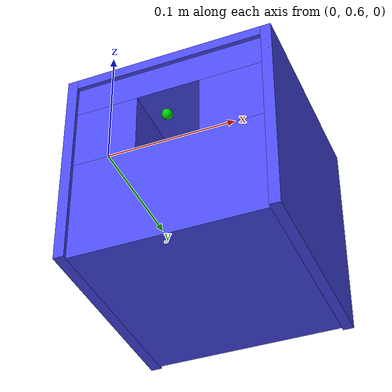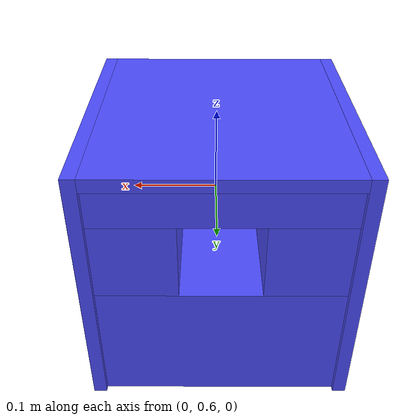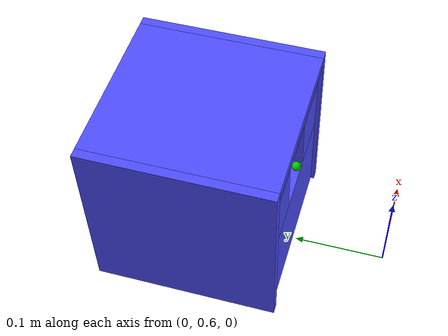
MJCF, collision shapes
<mujoco model="peg_block">
    <compiler angle="radian" inertiafromgeom="auto" inertiagrouprange="4 5"/>
    <asset>
        <texture name="T_peg_block_wood" type="cube" file="../textures/wood1.png"/>

      <material name="peg_block_col" rgba="0.3 0.3 1.0 0.5" shininess="0" specular="0"/>
      <material name="peg_block_wood" texture="T_peg_block_wood" shininess="1" reflectance=".7" specular=".5"/>
      <material name="peg_block_red" rgba=".55 0 0 1" shininess="1" reflectance=".7" specular=".5"/>

    </asset>
    <default>

      <default class="peg_block_base">
          <joint armature="0.001" damping="2" limited="true"/>
          <geom conaffinity="0" contype="0" group="1" type="mesh"/>
          <position ctrllimited="true" ctrlrange="0 1.57"/>
          <default class="peg_block_viz">
              <geom condim="4" type="mesh"/>
          </default>
          <default class="peg_block_col">
              <geom conaffinity="1" condim="3" contype="1" group="4" material="peg_block_col" solimp="0.99 0.99 0.01" solref="0.01 1"/>
          </default>
      </default>
    </default>

    <asset>
      <mesh file="../objects/meshes/peg_block/block_inner.stl" name="block_inner"/>
        <mesh file="../objects/meshes/peg_block/block_outer.stl" name="block_outer"/>
    </asset>
    <worldbody>
        <body pos="0 0.8 0">
            <body childclass="peg_block_base">
                <geom material="peg_block_red" mesh="block_inner" pos="0 0 0.095"/>
                <geom material="peg_block_wood" mesh="block_outer" pos="0 0 0.1"/>
                <geom class="peg_block_col" pos="0 0 0.195" size="0.09 0.1 0.005" type="box" mass="1000"/>
                <geom class="peg_block_col" pos="0 0 0.05" size="0.09 0.096 0.05" type="box" mass="1000"/>
                <geom class="peg_block_col" pos="-0.06 0 0.13" size="0.03 0.096 0.03" type="box" mass="1000"/>
                <geom class="peg_block_col" pos="0.06 0 0.13" size="0.03 0.096 0.03" type="box" mass="1000"/>
                <geom class="peg_block_col" pos="0 0 0.175" size="0.09 0.096 0.015" type="box" mass="1000"/>
                <geom class="peg_block_col" pos="0.095 0 0.1" size="0.005 0.1 0.1" type="box" mass="1000"/>
                <geom class="peg_block_col" pos="-0.095 0 0.1" size="0.005 0.1 0.1" type="box" mass="1000"/>
                <site name="hole" pos="0 -.096 0.13" size="0.005" rgba="0 0.8 0 1"/>
                <site name="bottom_right_corner_collision_box_1" pos="0.1 -0.11 0.01" size="0.0001"/>
                <site name="top_left_corner_collision_box_1" pos="-0.1 -.15 0.096" size="0.0001"/>
                <site name="bottom_right_corner_collision_box_2" pos="0.1 -0.11 0.16" size="0.0001"/>
                <site name="top_left_corner_collision_box_2" pos="-0.1 -.17 0.19" size="0.0001"/>
            </body>
        </body>
    </worldbody>
</mujoco>
